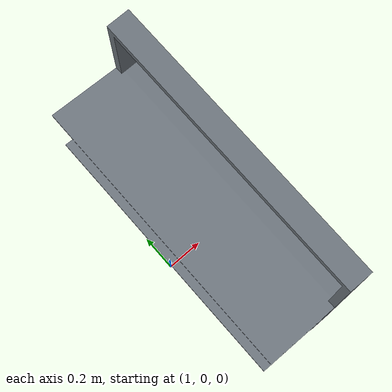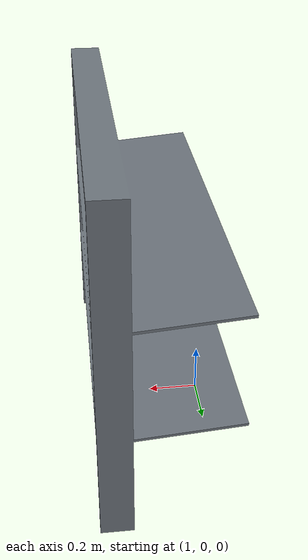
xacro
<?xml version="1.0"?>
<robot name="rack" xmlns:xacro="http://www.ros.org/wiki/xacro">

  <xacro:arg name="parent" default="odom" />
  <xacro:arg name="xyz"    default="1.4 0 0" />
  <xacro:arg name="rpy"    default="0 0 3.14159265358979" />

  <link name="$(arg parent)" />

  <joint name="rack_mount" type="fixed">
    <origin xyz="$(arg xyz)" rpy="$(arg rpy)" />
    <parent link="$(arg parent)" />
    <child link="prt_rack_dummy" />
  </joint>

  <link name="prt_rack_dummy">
    <visual>
      <origin xyz="0 0 0" rpy="0 0 0" />
      <geometry>
        <mesh filename="package://dhl_description/meshes/prt_rack_dummy_1_2.stl"
              scale="0.001 0.001 0.001" />
      </geometry>
      <material name="rack_steel">
        <color rgba="0.42 0.45 0.48 1.0" />
      </material>
    </visual>
    <collision>
      <origin xyz="0 0 0" rpy="0 0 0" />
      <geometry>
        <mesh filename="package://dhl_description/meshes/prt_rack_dummy_1_2.stl"
              scale="0.001 0.001 0.001" />
      </geometry>
    </collision>
  </link>

</robot>
